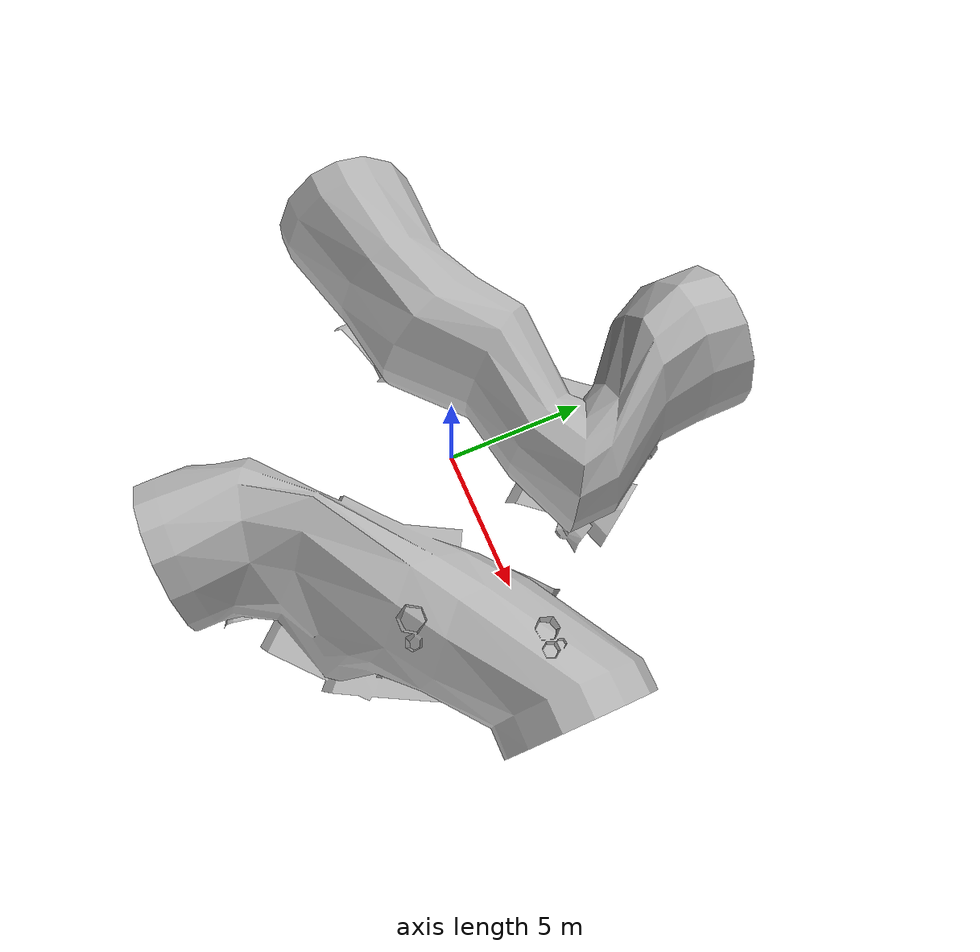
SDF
<?xml version="1.0" ?>
<sdf version="1.6">
  <model name="cave_tile_4">
    <static>true</static>
    <link name="link">
      <collision name="collision">
        <geometry>
          <mesh>
            <uri>model://cave_tile_4/meshes/cave_tile_4.dae</uri>
          </mesh>
        </geometry>
      </collision>
      <visual name="visual">
        <geometry>
          <mesh>
            <uri>model://cave_tile_4/meshes/cave_tile_4.dae</uri>
          </mesh>
        </geometry>
      </visual>
    </link>
  </model>
</sdf>
